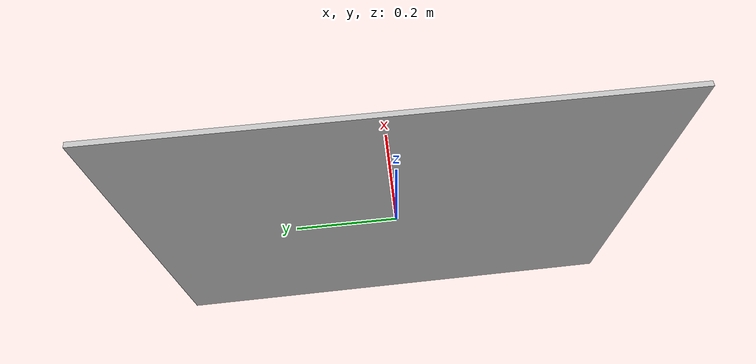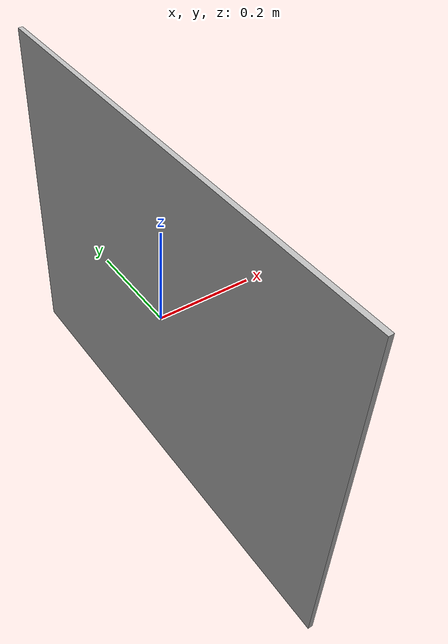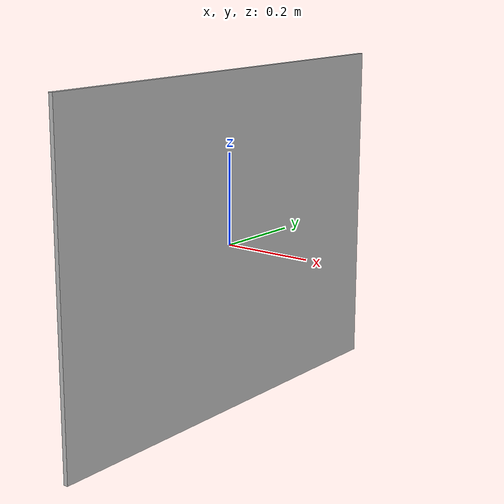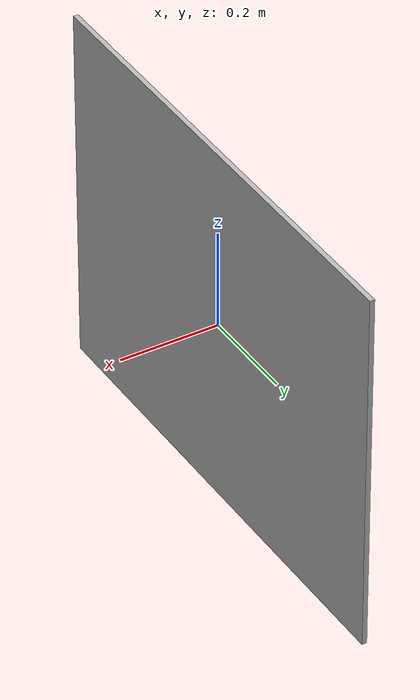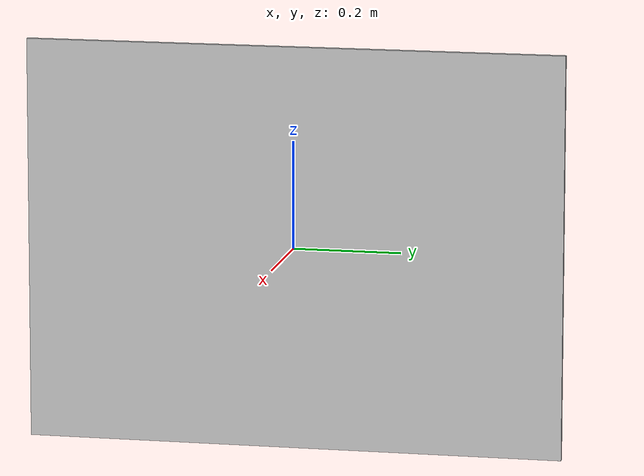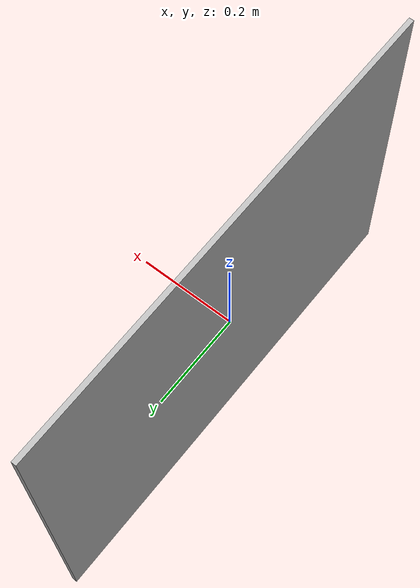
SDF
<?xml version="1.0"?>
<sdf version="1.6">
  <model name="poster_plane 2">
    <static>true</static>

    <link name="poster_link">
      <!-- 视觉：一个很薄的盒子，避免与墙面z-fighting -->
      <visual name="poster_visual">
        <pose>0 0 0 0 0 0</pose>
        <geometry>
          <!-- 海报尺寸：先设 1.0m x 0.7m（你可后面改） -->
          <box><size>0.01 1.0 0.75</size></box>
        </geometry>

        <material>
          <script>
            <uri>file:///root/catkin_ws/src/gazebo/poster_plane 2/materials/scripts</uri>
            <uri>file:///root/catkin_ws/src/gazebo/poster_plane 2/materials/textures</uri>
            <name>Poster/Poster2</name>
          </script>
        </material>
      </visual>
    </link>
  </model>
</sdf>
